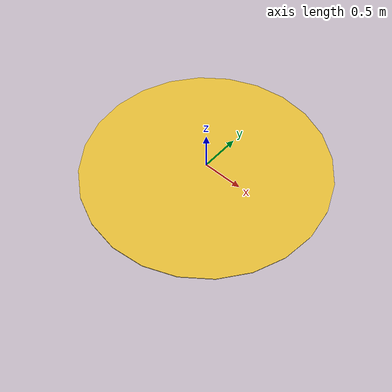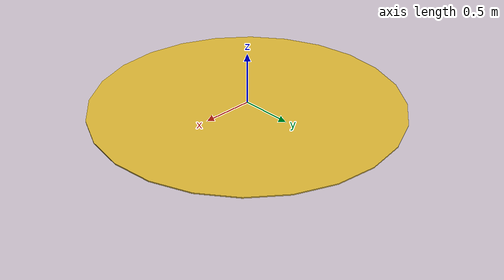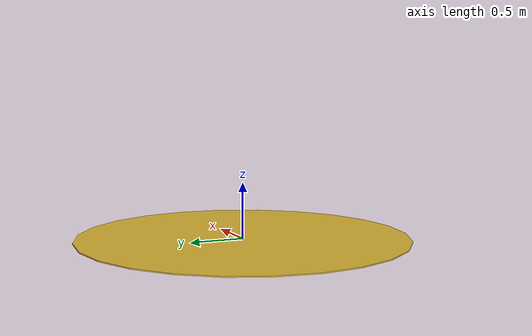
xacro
<?xml version="1.0"?>
<robot name="mesaIzq" xmlns:xacro="http://ros.org/wiki/xacro">
  <xacro:property name="pi" value="3.1415" />
  <xacro:property name="width" value="0.02" />
  <xacro:property name="radio" value="0.02" />
  <xacro:property name="mass" value="1.0" />

<!-- DEFINICIONES INICIALES -->
  <xacro:macro name="default_inertial" params="mass">
    <inertial>
      <mass value="${mass}" />
      <inertia ixx="1.0" ixy="0.0" ixz="0.0" iyy="1.0" iyz="0.0" izz="1.0" />
    </inertial>
  </xacro:macro>

<!-- CONSTRUCCION DE cilindroS PARA CONTROLAR LA TERCERA EN TODAS LAS POSICIONES -->
  <link name="world">
  </link>

  <joint name="cilindroZ_extension" type="prismatic">
    <parent link="world"/>
    <child link="cilindroZ_link"/>
    <axis xyz="0 0 1" />
    <limit effort="1000.0" lower="-100" upper="100" velocity="0.5"/>
    <origin rpy="0 0 0" xyz="0 0 0"/>
    <dynamics damping="1.0" friction="0.0"/>
  </joint>

  <link name="cilindroZ_link">
    <gravity>0</gravity>
    <visual>
      <origin xyz="0 0 0" rpy="0 0 0 "/>
      <geometry>
        <cylinder radius="1.5" length="0.01"/>
      </geometry>
      <origin xyz="0 0 0" rpy="0 0 0 "/>
    </visual>
    <self_collide>0</self_collide>
    <enable_wind>0</enable_wind>
    <kinematic>0</kinematic>
    <xacro:default_inertial mass="0.01"/>
  </link>

  <transmission name="gripper_extension_transZ" type="SimpleTransmission">
    <type>transmission_interface/SimpleTransmission</type>
    <actuator name="gripper_extension_motorZ">
      <mechanicalReduction>1</mechanicalReduction>
    </actuator>
    <joint name="cilindroZ_extension">
      <hardwareInterface>EffortJointInterface</hardwareInterface>
      <mechanicalReduction>1</mechanicalReduction>
    </joint>
  </transmission>

  <!-- Gazebo plugin for ROS Control -->
  <gazebo>
    <plugin name="gazebo_ros_control" filename="libgazebo_ros_control.so">
      <robotSimType>gazebo_ros_control/DefaultRobotHWSim</robotSimType>
    </plugin>

  </gazebo>

  <gazebo reference="cilindroZ_link">
    <mu1>0.2</mu1>
    <mu2>0.2</mu2>
    <material>Gazebo/Gold</material>

  </gazebo>

</robot>
